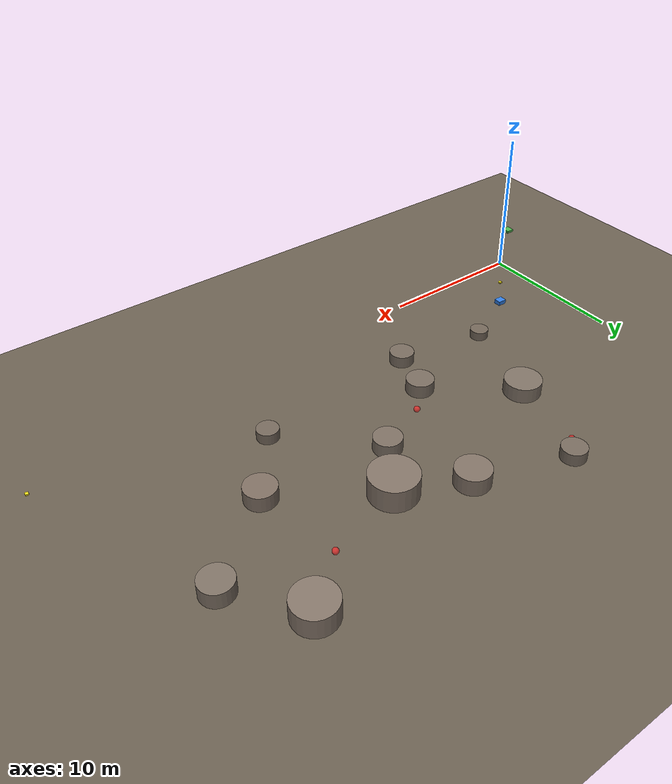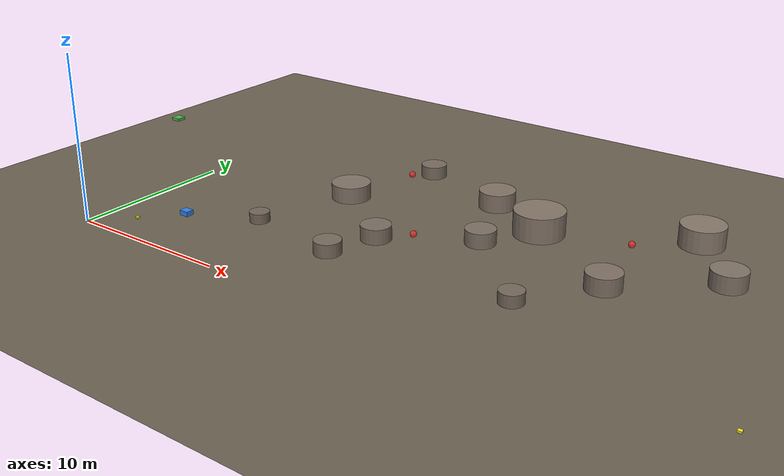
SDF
<?xml version="1.0" ?>
<sdf version="1.8">
  <world name="aura_disaster_zone">
    <physics name="default" type="ode">
      <max_step_size>0.001</max_step_size>
      <real_time_factor>1.0</real_time_factor>
    </physics>
    <light name="sun" type="directional">
      <pose>0 0 30 0.3 0.5 0</pose>
      <diffuse>0.9 0.9 0.85 1</diffuse>
    </light>
    <model name="ground_plane">
      <static>true</static>
      <link name="link">
        <collision name="collision">
          <geometry><plane><normal>0 0 1</normal><size>50 50</size></plane></geometry>
        </collision>
        <visual name="visual">
          <geometry><plane><normal>0 0 1</normal><size>50 50</size></plane></geometry>
          <material><ambient>0.42 0.38 0.32 1</ambient></material>
        </visual>
      </link>
    </model>
    <!-- Zone boundary markers (visual tape) -->
    <model name="zone_corner_1"><static>true</static><pose>2 2 0.05 0 0 0</pose>
      <link name="link"><visual name="v"><geometry><box><size>0.2 0.2 0.1</size></box></geometry>
      <material><ambient>1 0.9 0.1 1</ambient></material></visual></link></model>
    <model name="zone_corner_2"><static>true</static><pose>38 2 0.05 0 0 0</pose>
      <link name="link"><visual name="v"><geometry><box><size>0.2 0.2 0.1</size></box></geometry>
      <material><ambient>1 0.9 0.1 1</ambient></material></visual></link></model>
    <!-- Rubble obstacles (collision + visual cylinders) -->
    <model name="rubble_1"><static>true</static><pose>10 12 0.5 0 0 0</pose>
      <link name="link"><collision name="c"><geometry><cylinder><radius>1.2</radius><length>1.0</length></cylinder></geometry></collision>
      <visual name="v"><geometry><cylinder><radius>1.2</radius><length>1.0</length></cylinder></geometry>
      <material><ambient>0.5 0.45 0.4 1</ambient></material></visual></link></model>
    <model name="rubble_2"><static>true</static><pose>15 8 0.45 0 0 0</pose>
      <link name="link"><collision name="c"><geometry><cylinder><radius>0.9</radius><length>0.9</length></cylinder></geometry></collision>
      <visual name="v"><geometry><cylinder><radius>0.9</radius><length>0.9</length></cylinder></geometry>
      <material><ambient>0.48 0.43 0.38 1</ambient></material></visual></link></model>
    <model name="rubble_3"><static>true</static><pose>22 14 0.75 0 0 0</pose>
      <link name="link"><collision name="c"><geometry><cylinder><radius>1.5</radius><length>1.5</length></cylinder></geometry></collision>
      <visual name="v"><geometry><cylinder><radius>1.5</radius><length>1.5</length></cylinder></geometry>
      <material><ambient>0.52 0.46 0.41 1</ambient></material></visual></link></model>
    <model name="rubble_4"><static>true</static><pose>28 10 0.5 0 0 0</pose>
      <link name="link"><collision name="c"><geometry><cylinder><radius>1.0</radius><length>1.0</length></cylinder></geometry></collision>
      <visual name="v"><geometry><cylinder><radius>1.0</radius><length>1.0</length></cylinder></geometry>
      <material><ambient>0.5 0.44 0.39 1</ambient></material></visual></link></model>
    <model name="rubble_5"><static>true</static><pose>12 18 0.4 0 0 0</pose>
      <link name="link"><collision name="c"><geometry><cylinder><radius>0.8</radius><length>0.8</length></cylinder></geometry></collision>
      <visual name="v"><geometry><cylinder><radius>0.8</radius><length>0.8</length></cylinder></geometry>
      <material><ambient>0.47 0.42 0.37 1</ambient></material></visual></link></model>
    <model name="rubble_6"><static>true</static><pose>18 16 0.55 0 0 0</pose>
      <link name="link"><collision name="c"><geometry><cylinder><radius>1.1</radius><length>1.1</length></cylinder></geometry></collision>
      <visual name="v"><geometry><cylinder><radius>1.1</radius><length>1.1</length></cylinder></geometry>
      <material><ambient>0.51 0.45 0.4 1</ambient></material></visual></link></model>
    <model name="rubble_7"><static>true</static><pose>25 6 0.35 0 0 0</pose>
      <link name="link"><collision name="c"><geometry><cylinder><radius>0.7</radius><length>0.7</length></cylinder></geometry></collision>
      <visual name="v"><geometry><cylinder><radius>0.7</radius><length>0.7</length></cylinder></geometry>
      <material><ambient>0.46 0.41 0.36 1</ambient></material></visual></link></model>
    <model name="rubble_8"><static>true</static><pose>30 18 0.65 0 0 0</pose>
      <link name="link"><collision name="c"><geometry><cylinder><radius>1.3</radius><length>1.3</length></cylinder></geometry></collision>
      <visual name="v"><geometry><cylinder><radius>1.3</radius><length>1.3</length></cylinder></geometry>
      <material><ambient>0.53 0.47 0.42 1</ambient></material></visual></link></model>
    <model name="rubble_9"><static>true</static><pose>8 6 0.3 0 0 0</pose>
      <link name="link"><collision name="c"><geometry><cylinder><radius>0.6</radius><length>0.6</length></cylinder></geometry></collision>
      <visual name="v"><geometry><cylinder><radius>0.6</radius><length>0.6</length></cylinder></geometry>
      <material><ambient>0.45 0.4 0.35 1</ambient></material></visual></link></model>
    <model name="rubble_10"><static>true</static><pose>20 11 0.45 0 0 0</pose>
      <link name="link"><collision name="c"><geometry><cylinder><radius>0.9</radius><length>0.9</length></cylinder></geometry></collision>
      <visual name="v"><geometry><cylinder><radius>0.9</radius><length>0.9</length></cylinder></geometry>
      <material><ambient>0.49 0.44 0.39 1</ambient></material></visual></link></model>
    <model name="rubble_11"><static>true</static><pose>33 14 0.5 0 0 0</pose>
      <link name="link"><collision name="c"><geometry><cylinder><radius>1.0</radius><length>1.0</length></cylinder></geometry></collision>
      <visual name="v"><geometry><cylinder><radius>1.0</radius><length>1.0</length></cylinder></geometry>
      <material><ambient>0.5 0.45 0.4 1</ambient></material></visual></link></model>
    <model name="rubble_12"><static>true</static><pose>14 5 0.4 0 0 0</pose>
      <link name="link"><collision name="c"><geometry><cylinder><radius>0.8</radius><length>0.8</length></cylinder></geometry></collision>
      <visual name="v"><geometry><cylinder><radius>0.8</radius><length>0.8</length></cylinder></geometry>
      <material><ambient>0.47 0.42 0.37 1</ambient></material></visual></link></model>
    <!-- Hidden victims — visual only, no collision -->
    <model name="victim_marker_1"><static>true</static><pose>16.5 9.5 0.15 0 0 0</pose>
      <link name="link"><visual name="v"><geometry><sphere><radius>0.2</radius></sphere></geometry>
      <material><ambient>1 0.15 0.15 0.7</ambient></material></visual></link></model>
    <model name="victim_marker_2"><static>true</static><pose>27 15.5 0.15 0 0 0</pose>
      <link name="link"><visual name="v"><geometry><sphere><radius>0.2</radius></sphere></geometry>
      <material><ambient>1 0.15 0.15 0.7</ambient></material></visual></link></model>
    <model name="victim_marker_3"><static>true</static><pose>11 17 0.15 0 0 0</pose>
      <link name="link"><visual name="v"><geometry><sphere><radius>0.2</radius></sphere></geometry>
      <material><ambient>1 0.15 0.15 0.7</ambient></material></visual></link></model>
    <!-- Spawn poses for robots (kinematic bridge uses these as initial state) -->
    <model name="aura_rover_spawn"><static>true</static><pose>4 4 0.2 0 0 0</pose>
      <link name="link"><visual name="v"><geometry><box><size>0.6 0.5 0.3</size></box></geometry>
      <material><ambient>0.2 0.5 0.9 1</ambient></material></visual></link></model>
    <model name="aura_drone_spawn"><static>true</static><pose>4 4 6 0 0 0</pose>
      <link name="link"><visual name="v"><geometry><box><size>0.5 0.5 0.15</size></box></geometry>
      <material><ambient>0.3 0.7 0.3 1</ambient></material></visual></link></model>
  </world>
</sdf>
